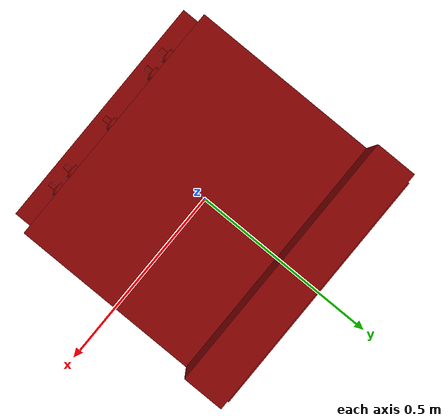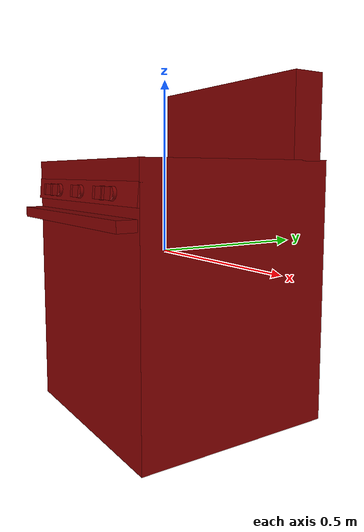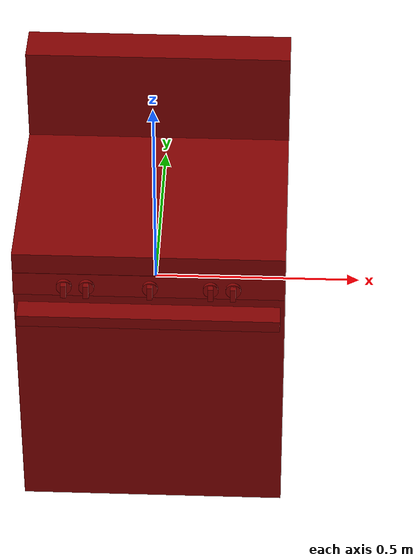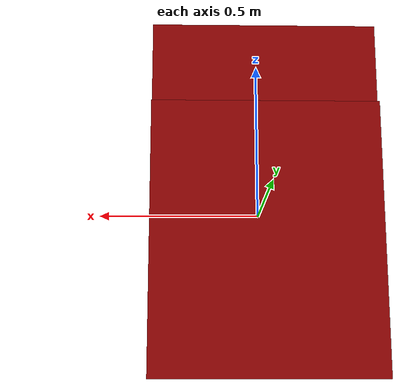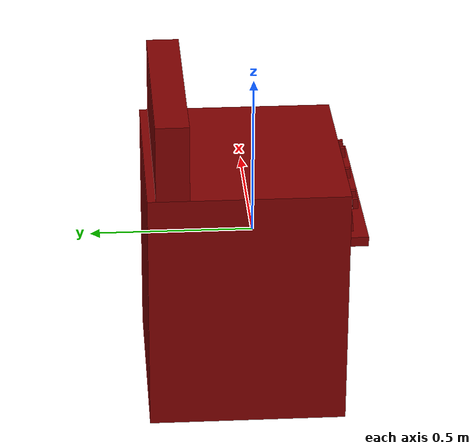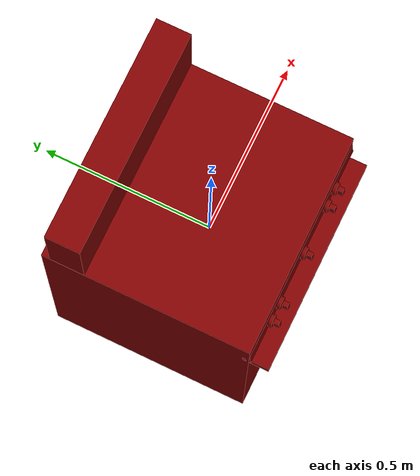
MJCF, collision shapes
<mujoco model="model">
  <compiler angle="radian"/>
  <asset>
    <texture type="2d" name="image7" file="visuals/image7.png"/>
    <texture type="2d" name="image0" file="visuals/image0.png"/>
    <texture type="2d" name="image10" file="visuals/image10.png"/>
    <texture type="2d" name="image5" file="visuals/image5.png"/>
    <texture type="2d" name="image3" file="visuals/image3.png"/>
    <material name="Mat_Back" texture="image7" specular="0.5" shininess="0.25"/>
    <material name="Mat_Decal" texture="image0" specular="0.5" shininess="0.25"/>
    <material name="Mat_Doors" texture="image10" specular="0.5" shininess="0.25"/>
    <material name="Mat_Interior" texture="image5" specular="0.5" shininess="0.25"/>
    <material name="Mat_Main" texture="image3" specular="0.5" shininess="0.25"/>
    <material name="Mat_Transparent" specular="0.5" shininess="0.8562316889999999" rgba="0.266520 0.266520 0.266520 0.475964"/>
    <mesh file="visuals/model_0.obj" name="model_0_vis" scale="1 1 1"/>
    <mesh file="visuals/model_1.obj" name="model_1_vis" scale="1 1 1"/>
    <mesh file="visuals/model_2.obj" name="model_2_vis" scale="1 1 1"/>
    <mesh file="visuals/model_3.obj" name="model_3_vis" scale="1 1 1"/>
    <mesh file="visuals/model_4.obj" name="model_4_vis" scale="1 1 1"/>
    <mesh file="visuals/model_5.obj" name="model_5_vis" scale="1 1 1"/>
    <mesh file="visuals/knob_rear_right_0.obj" name="knob_rear_right_0_vis" scale="1 1 1"/>
    <mesh file="visuals/knob_rear_right_1.obj" name="knob_rear_right_1_vis" scale="1 1 1"/>
    <mesh file="visuals/knob_front_left_0.obj" name="knob_front_left_0_vis" scale="1 1 1"/>
    <mesh file="visuals/knob_front_left_1.obj" name="knob_front_left_1_vis" scale="1 1 1"/>
    <mesh file="visuals/knob_front_right_0.obj" name="knob_front_right_0_vis" scale="1 1 1"/>
    <mesh file="visuals/knob_front_right_1.obj" name="knob_front_right_1_vis" scale="1 1 1"/>
    <mesh file="visuals/knob_rear_left_0.obj" name="knob_rear_left_0_vis" scale="1 1 1"/>
    <mesh file="visuals/knob_rear_left_1.obj" name="knob_rear_left_1_vis" scale="1 1 1"/>
    <mesh file="visuals/knob_center_0.obj" name="knob_center_0_vis" scale="1 1 1"/>
    <mesh file="visuals/knob_center_1.obj" name="knob_center_1_vis" scale="1 1 1"/>
  </asset>
  <default>
    <default class="visual">
      <geom conaffinity="0" contype="0" group="1" type="mesh"/>
    </default>
    <default class="collision">
      <geom group="0" rgba="0.5 0 0 0.5"/>
    </default>
    <default class="region">
      <geom group="1" conaffinity="0" contype="0" rgba="0 1 0 0"/>
    </default>
  </default>
  <worldbody>
    <body>
      <body name="object">
        <geom solimp="0.998 0.998 0.001" solref="0.001 1" density="100" friction="0.95 0.3 0.1" type="mesh" mesh="model_0_vis" material="Mat_Doors" class="visual"/>
        <geom solimp="0.998 0.998 0.001" solref="0.001 1" density="100" friction="0.95 0.3 0.1" type="mesh" mesh="model_1_vis" material="Mat_Interior" class="visual"/>
        <geom solimp="0.998 0.998 0.001" solref="0.001 1" density="100" friction="0.95 0.3 0.1" type="mesh" mesh="model_2_vis" material="Mat_Transparent" class="visual"/>
        <geom solimp="0.998 0.998 0.001" solref="0.001 1" density="100" friction="0.95 0.3 0.1" type="mesh" mesh="model_3_vis" material="Mat_Decal" class="visual"/>
        <geom solimp="0.998 0.998 0.001" solref="0.001 1" density="100" friction="0.95 0.3 0.1" type="mesh" mesh="model_4_vis" material="Mat_Main" class="visual"/>
        <geom solimp="0.998 0.998 0.001" solref="0.001 1" density="100" friction="0.95 0.3 0.1" type="mesh" mesh="model_5_vis" material="Mat_Back" class="visual"/>
        <!-- Burners -->
        <site name="burner_on_front_left" pos="-0.18 -0.125 0.235" size="0.035 0.005" rgba="0.3 0.4 1 0.5" type="cylinder"/>
        <site name="burner_on_front_right" pos="0.181 -0.126 0.235" size="0.050 0.01" rgba="0.3 0.4 1 0.5" type="cylinder"/>
        <site name="burner_on_rear_left" pos="-0.182 0.078 0.235" size="0.039 0.005" rgba="0.3 0.4 1 0.5" type="cylinder"/>
        <site name="burner_on_rear_right" pos="0.181 0.078 0.235" size="0.032 0.005" rgba="0.3 0.4 1 0.5" type="cylinder"/>
        <site name="burner_on_center" pos="0 -0.025 0.235" size="0.035 0.005" rgba="0.3 0.4 1 0.5" type="cylinder"/>
        <site name="burner_front_left_place_site" pos="-0.18 -0.125 0.268" size="0.035 0.001" rgba="0.3 0.4 1 0" type="cylinder"/>
        <site name="burner_front_right_place_site" pos="0.181 -0.126 0.268" size="0.050 0.001" rgba="0.3 0.4 1 0" type="cylinder"/>
        <site name="burner_rear_left_place_site" pos="-0.182 0.078 0.268" size="0.039 0.001" rgba="0.3 0.4 1 0" type="cylinder"/>
        <site name="burner_rear_right_place_site" pos="0.181 0.078 0.268" size="0.032 0.001" rgba="0.3 0.4 1 0" type="cylinder"/>
        <site name="burner_center_place_site" pos="0 -0.025 0.268" size="0.035 0.001" rgba="0.3 0.4 1 0" type="cylinder"/>
        <!-- Main -->
        <geom class="collision" type="box" pos="0 0.035 -0.112" size="0.32 0.3 0.38"/>
        <!-- Oven Handle -->
        <geom class="collision" type="box" pos="0 -0.29 0.112" size="0.31 0.03 0.015"/>
        <!-- Control Panel -->
        <geom class="collision" type="box" pos="0 -0.257 0.183" size="0.32 0.012 0.03" axisangle="1 0 0 -0.0873"/>
        <!-- Back Display Panel -->
        <geom class="collision" type="box" pos="0 0.26 0.385" size="0.32 0.05 0.12"/>
        <body name="knob_front_right">
          <joint axis="0 0.9962 -0.0872" name="knob_front_right_joint" damping="1" pos="0.199 -0.275 0.183"/>
          <geom solimp="0.998 0.998 0.001" solref="0.001 1" density="100" friction="0.95 0.3 0.1" type="mesh" mesh="knob_rear_right_0_vis" material="Mat_Decal" class="visual"/>
          <geom solimp="0.998 0.998 0.001" solref="0.001 1" density="100" friction="0.95 0.3 0.1" type="mesh" mesh="knob_rear_right_1_vis" material="Mat_Main" class="visual"/>
          <geom class="collision" type="cylinder" pos="0.199 -0.275 0.183" size="0.018 0.005 0" friction="100 0.0001 0.1" solref="0.001 5" solimp="0.999 0.99 0.001 0.5 2" axisangle="1 0 0 1.484"/>
          <geom class="collision" type="box" pos="0.199 -0.29 0.184" size="0.0065 0.008 0.016" friction="100 0.0001 0.1" solref="0.001 5" solimp="0.999 0.99 0.001 0.5 2" axisangle="1 0 0 -0.0873" name="knob_front_right_main"/>
        </body>
        <body name="knob_front_left">
          <joint axis="0 0.9962 -0.0872" name="knob_front_left_joint" damping="1" pos="-0.199 -0.275 0.183"/>
          <geom solimp="0.998 0.998 0.001" solref="0.001 1" density="100" friction="0.95 0.3 0.1" type="mesh" mesh="knob_front_left_0_vis" material="Mat_Decal" class="visual"/>
          <geom solimp="0.998 0.998 0.001" solref="0.001 1" density="100" friction="0.95 0.3 0.1" type="mesh" mesh="knob_front_left_1_vis" material="Mat_Main" class="visual"/>
          <geom class="collision" type="cylinder" pos="-0.199 -0.275 0.183" size="0.018 0.005 0" friction="100 0.0001 0.1" solref="0.001 5" solimp="0.999 0.99 0.001 0.5 2" axisangle="1 0 0 1.484"/>
          <geom class="collision" type="box" pos="-0.199 -0.29 0.184" size="0.0065 0.008 0.016" friction="100 0.0001 0.1" solref="0.001 5" solimp="0.999 0.99 0.001 0.5 2" axisangle="1 0 0 -0.0873" name="knob_front_left_main"/>
        </body>
        <body name="knob_rear_right">
          <joint axis="0 0.9962 -0.0872" name="knob_rear_right_joint" damping="1" pos="0.146 -0.275 0.183"/>
          <geom solimp="0.998 0.998 0.001" solref="0.001 1" density="100" friction="0.95 0.3 0.1" type="mesh" mesh="knob_front_right_0_vis" material="Mat_Decal" class="visual"/>
          <geom solimp="0.998 0.998 0.001" solref="0.001 1" density="100" friction="0.95 0.3 0.1" type="mesh" mesh="knob_front_right_1_vis" material="Mat_Main" class="visual"/>
          <geom class="collision" type="cylinder" pos="0.146 -0.275 0.183" size="0.018 0.005 0" friction="100 0.0001 0.1" solref="0.001 5" solimp="0.999 0.99 0.001 0.5 2" axisangle="1 0 0 1.484"/>
          <geom class="collision" type="box" pos="0.146 -0.29 0.184" size="0.0065 0.008 0.016" friction="100 0.0001 0.1" solref="0.001 5" solimp="0.999 0.99 0.001 0.5 2" axisangle="1 0 0 -0.0873" name="knob_rear_right_main"/>
        </body>
        <body name="knob_rear_left">
          <joint axis="0 0.9962 -0.0872" name="knob_rear_left_joint" damping="1" pos="-0.146 -0.275 0.183"/>
          <geom solimp="0.998 0.998 0.001" solref="0.001 1" density="100" friction="0.95 0.3 0.1" type="mesh" mesh="knob_rear_left_0_vis" material="Mat_Decal" class="visual"/>
          <geom solimp="0.998 0.998 0.001" solref="0.001 1" density="100" friction="0.95 0.3 0.1" type="mesh" mesh="knob_rear_left_1_vis" material="Mat_Main" class="visual"/>
          <geom class="collision" type="cylinder" pos="-0.146 -0.275 0.183" size="0.018 0.005 0" friction="100 0.0001 0.1" solref="0.001 5" solimp="0.999 0.99 0.001 0.5 2" axisangle="1 0 0 1.484"/>
          <geom class="collision" type="box" pos="-0.146 -0.29 0.184" size="0.0065 0.008 0.016" friction="100 0.0001 0.1" solref="0.001 5" solimp="0.999 0.99 0.001 0.5 2" axisangle="1 0 0 -0.0873" name="knob_rear_left_main"/>
        </body>
        <body name="knob_center">
          <joint axis="0 0.9962 -0.0872" name="knob_center_joint" damping="1" pos="0.0035 -0.275 0.183"/>
          <geom solimp="0.998 0.998 0.001" solref="0.001 1" density="100" friction="0.95 0.3 0.1" type="mesh" mesh="knob_center_0_vis" material="Mat_Decal" class="visual"/>
          <geom solimp="0.998 0.998 0.001" solref="0.001 1" density="100" friction="0.95 0.3 0.1" type="mesh" mesh="knob_center_1_vis" material="Mat_Main" class="visual"/>
          <geom class="collision" type="cylinder" pos="0.0035 -0.275 0.183" size="0.018 0.005 0" friction="100 0.0001 0.1" solref="0.001 5" solimp="0.999 0.99 0.001 0.5 2" axisangle="1 0 0 1.484"/>
          <geom class="collision" type="box" pos="0.0035 -0.29 0.184" size="0.0065 0.008 0.016" friction="100 0.0001 0.1" solref="0.001 5" solimp="0.999 0.99 0.001 0.5 2" axisangle="1 0 0 -0.0873" name="knob_center_main"/>
        </body>
        <!-- exterior bounding box points -->
        <geom class="region" name="reg_main" type="box" pos="0.0 0.017499999999999988 -0.12" size="0.32 0.2825 0.37"/>
      </body>
    </body>
  </worldbody>
</mujoco>
